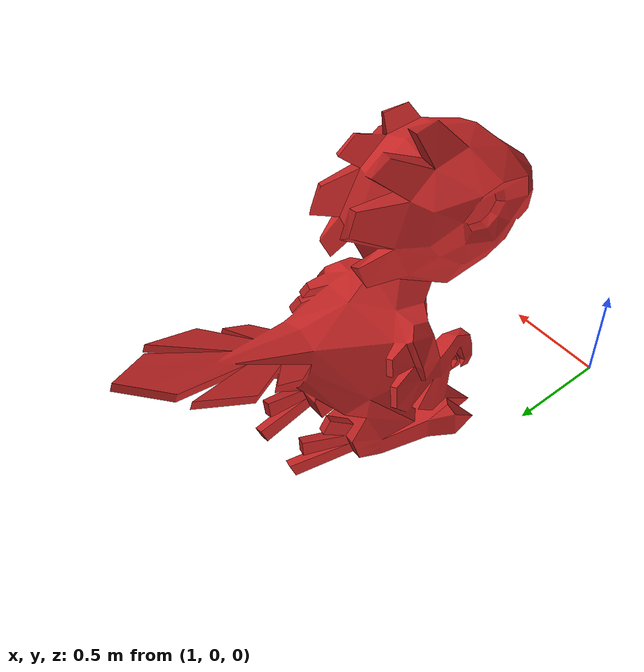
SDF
<?xml version="1.0"?>
<sdf version="1.4">
<model name="raptor_model">
    <static>true</static>
    <pose>1.5 1 -0.25 0 0 0</pose>
    <link name="link">
      <visual name="visual">
    <pose>0 0 0 0 0 0</pose>
        <geometry>
          <mesh>
            <uri>model://raptor_model/meshes/baby_raptor.stl</uri>
             <scale>0.03 0.03 0.03</scale>
          </mesh>
        </geometry>
        <cast_shadows>true</cast_shadows>
         <material>
            <script>
              <uri>file://media/materials/scripts/gazebo.material</uri>
              <name>Gazebo/Red</name>
            </script>
          </material>
      </visual>
  <collision name="collision">
   <pose>0 0 0 0 0 0</pose>
       <geometry>
          <mesh>
            <uri>model://raptor_model/meshes/baby_raptor.stl</uri>
              <scale>0.03 0.03 0.03</scale>
          </mesh>
        </geometry>
      </collision>
    </link>
  </model>
</sdf>
